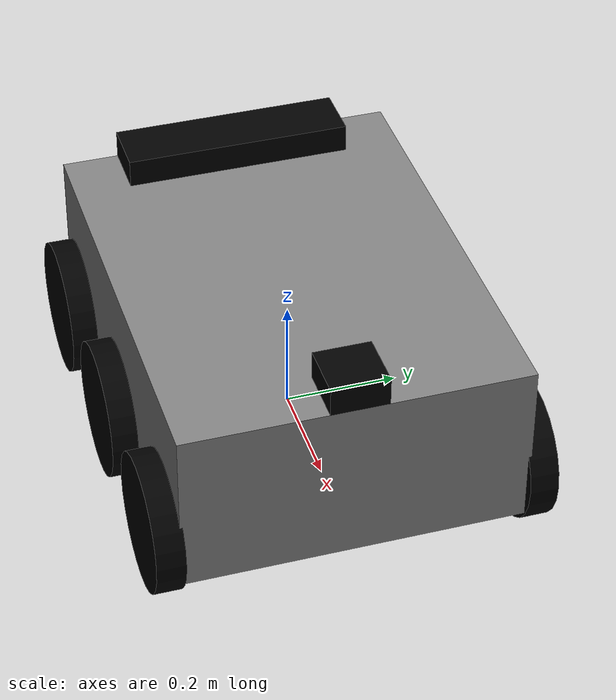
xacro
<?xml version="1.0"?>
<robot name="skid6x6" xmlns:xacro="http://www.ros.org/wiki/xacro">

  <xacro:include filename="common_properties.xacro"/>
  <xacro:include filename="wheel_macro.xacro"/>
  <xacro:include filename="sensor_plugins.xacro"/>
  <xacro:include filename="controller_plugins.xacro"/>

  <!--                         BASE LINK                         -->
  <link name="base_link">
    <visual>
      <geometry>
        <box size="0.8 0.6 0.3"/>
      </geometry>
      <origin xyz="0 0 0.15"/>
      <material name="grey"/>
    </visual>
    <collision>
      <geometry>
        <box size="0.8 0.6 0.3"/>
      </geometry>
      <origin xyz="0 0 0.15"/>
    </collision>
    <inertial>
      <mass value="10.0"/>
      <origin xyz="0 0 0.15"/>
      <inertia ixx="0.2" ixy="0.0" ixz="0.0" iyy="0.3" iyz="0.0" izz="0.4"/>
    </inertial>
  </link>

  <gazebo reference="base_link">
    <material>Gazebo/White</material>
  </gazebo>

  <!--                    WHEELS (USING MACRO)                   -->
  <!-- Left side -->
  <xacro:wheel name="left_front_wheel" parent="base_link" x="0.3" y="0.32" z="0.06"/>
  <xacro:wheel name="left_mid_wheel"   parent="base_link" x="0.0" y="0.32" z="0.06"/>
  <xacro:wheel name="left_rear_wheel"  parent="base_link" x="-0.3" y="0.32" z="0.06"/>

  <!-- Right side -->
  <xacro:wheel name="right_front_wheel" parent="base_link" x="0.3" y="-0.32" z="0.06"/>
  <xacro:wheel name="right_mid_wheel"   parent="base_link" x="0.0" y="-0.32" z="0.06"/>
  <xacro:wheel name="right_rear_wheel"  parent="base_link" x="-0.3" y="-0.32" z="0.06"/>

  <!--                      FRONT LiDAR                          -->
  <link name="lidar_front_link">
    <visual>
      <geometry>
        <box size="0.1 0.1 0.05"/>
      </geometry>
      <origin xyz="0 0 0.025"/>
      <material name="black"/>
    </visual>
    <collision>
      <geometry>
        <box size="0.1 0.1 0.05"/>
      </geometry>
      <origin xyz="0 0 0.025"/>
    </collision>
    <inertial>
      <mass value="0.1"/>
      <origin xyz="0 0 0"/>
      <inertia ixx="0.0001" ixy="0.0" ixz="0.0" iyy="0.0001" iyz="0.0" izz="0.0001"/>
    </inertial>
  </link>

  <joint name="lidar_front_joint" type="fixed">
    <parent link="base_link"/>
    <child link="lidar_front_link"/>
    <origin rpy="0 0 0" xyz="0.35 0 0.3"/>
  </joint>

  <gazebo reference="lidar_front_link">
    <material>Gazebo/Black</material>
  </gazebo>

  <link name="lidar_front_frame" />
  <joint name="lidar_front_frame_joint" type="fixed">
    <parent link="lidar_front_link"/>
    <child link="lidar_front_frame"/>
    <origin rpy="0 0 0" xyz="0.05 0 0.05"/>
  </joint>

  <!--                      REAR LiDAR                           -->
  <link name="lidar_rear_link">
    <visual>
      <geometry>
        <box size="0.1 0.4 0.05"/>
      </geometry>
      <origin xyz="0 0 0.025"/>
      <material name="black"/>
    </visual>
    <collision>
      <geometry>
        <box size="0.1 0.1 0.05"/>
      </geometry>
      <origin xyz="0 0 0.025"/>
    </collision>
    <inertial>
      <mass value="0.1"/>
      <origin xyz="0 0 0"/>
      <inertia ixx="0.0001" ixy="0.0" ixz="0.0" iyy="0.0001" iyz="0.0" izz="0.0001"/>
    </inertial>
  </link>

  <joint name="lidar_rear_joint" type="fixed">
    <parent link="base_link"/>
    <child link="lidar_rear_link"/>
    <origin rpy="0 0 3.14" xyz="-0.35 0 0.3"/>
  </joint>

  <gazebo reference="lidar_rear_link">
    <material>Gazebo/Black</material>
  </gazebo>

  <link name="lidar_rear_frame"/>
  <joint name="lidar_rear_frame_joint" type="fixed">
    <parent link="lidar_rear_link"/>
    <child link="lidar_rear_frame"/>
    <origin rpy="0 0 0" xyz="0.05 0 0.05"/>
  </joint>

</robot>

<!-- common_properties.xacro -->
<xacro:robot xmlns:xacro="http://www.ros.org/wiki/xacro">

  <!--                         MATERIALS                         -->
  <material name="black">
    <color rgba="0 0 0 1"/>
  </material>

  <material name="grey">
    <color rgba="0.5 0.5 0.5 1"/>
  </material>

</xacro:robot>

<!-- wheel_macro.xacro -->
<robot xmlns:xacro="http://www.ros.org/wiki/xacro">

  <!--                         MACROS                            -->
  <!-- One macro for wheel creation (link + joint) -->
  <xacro:macro name="wheel" params="name parent x y z">
    <link name="${name}_link">
      <visual>
        <geometry>
          <cylinder length="0.05" radius="0.12"/>
        </geometry>
        <origin rpy="0 1.5708 0" xyz="0 0 0"/>
        <material name="black"/>
      </visual>
      <collision>
        <geometry>
          <cylinder length="0.05" radius="0.12"/>
        </geometry>
        <origin rpy="0 1.5708 0" xyz="0 0 0"/>
      </collision>
      <inertial>
        <mass value="0.5"/>
        <origin xyz="0 0 0"/>
        <inertia ixx="0.001" ixy="0.0" ixz="0.0" iyy="0.001" iyz="0.0" izz="0.001"/>
    </inertial>
    </link>

    <joint name="${name}_joint" type="continuous">
      <parent link="${parent}"/>
      <child link="${name}_link"/>
      <origin rpy="0 0 1.57" xyz="${x} ${y} ${z}"/>
      <axis xyz="1 0 0"/>
    </joint>

    <gazebo reference="${name}_link">
      <material>Gazebo/Black</material>
      <mu1>1.0</mu1>
      <mu2>1.0</mu2>
    </gazebo>
  </xacro:macro>

</robot>
